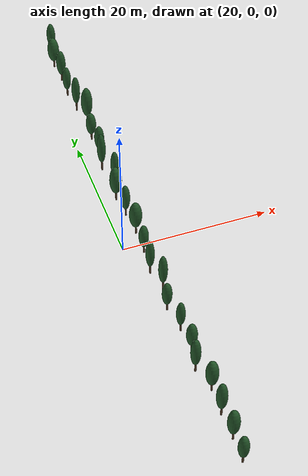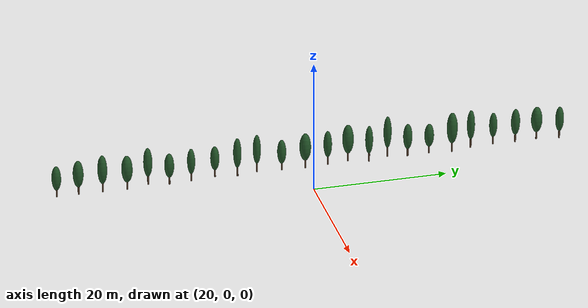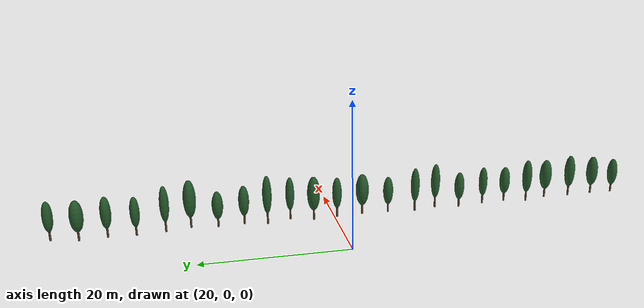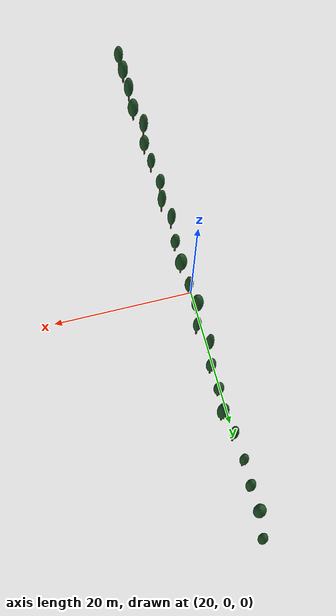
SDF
<sdf version="1.9">
 <world name="orchard_10x41">
  <model name="windbreak_E">
   <static>true</static>
   <link name="link">
    <visual name="wb_trunk_1">
     <pose>21.297 -38.000 4.976 0.0000 0.0000 0.0000</pose>
     <geometry><cylinder><radius>0.1200</radius><length>1.0540</length></cylinder></geometry>
     <material>
      <ambient>0.280 0.200 0.130 1</ambient>
      <diffuse>0.308 0.220 0.143 1</diffuse>
      <specular>0.084 0.060 0.039 1</specular>
     </material>
     <plugin filename="gz-sim-label-system" name="gz::sim::systems::Label"><label>63</label></plugin>
    </visual>
    <visual name="wb_crown_2">
     <pose>21.297 -38.000 7.371 0.0000 0.0000 0.0000</pose>
     <geometry><ellipsoid><radii>0.6716 0.6716 1.8684</radii></ellipsoid></geometry>
     <material>
      <ambient>0.120 0.300 0.140 1</ambient>
      <diffuse>0.132 0.330 0.154 1</diffuse>
      <specular>0.036 0.090 0.042 1</specular>
     </material>
     <plugin filename="gz-sim-label-system" name="gz::sim::systems::Label"><label>63</label></plugin>
    </visual>
    <visual name="wb_trunk_3">
     <pose>21.385 -34.858 5.043 0.0000 0.0000 0.0000</pose>
     <geometry><cylinder><radius>0.1200</radius><length>1.1688</length></cylinder></geometry>
     <material>
      <ambient>0.280 0.200 0.130 1</ambient>
      <diffuse>0.308 0.220 0.143 1</diffuse>
      <specular>0.084 0.060 0.039 1</specular>
     </material>
     <plugin filename="gz-sim-label-system" name="gz::sim::systems::Label"><label>63</label></plugin>
    </visual>
    <visual name="wb_crown_4">
     <pose>21.385 -34.858 7.699 0.0000 0.0000 0.0000</pose>
     <geometry><ellipsoid><radii>0.7596 0.7596 2.0720</radii></ellipsoid></geometry>
     <material>
      <ambient>0.120 0.300 0.140 1</ambient>
      <diffuse>0.132 0.330 0.154 1</diffuse>
      <specular>0.036 0.090 0.042 1</specular>
     </material>
     <plugin filename="gz-sim-label-system" name="gz::sim::systems::Label"><label>63</label></plugin>
    </visual>
    <visual name="wb_trunk_5">
     <pose>21.362 -31.351 5.071 0.0000 0.0000 0.0000</pose>
     <geometry><cylinder><radius>0.1200</radius><length>1.2591</length></cylinder></geometry>
     <material>
      <ambient>0.280 0.200 0.130 1</ambient>
      <diffuse>0.308 0.220 0.143 1</diffuse>
      <specular>0.084 0.060 0.039 1</specular>
     </material>
     <plugin filename="gz-sim-label-system" name="gz::sim::systems::Label"><label>63</label></plugin>
    </visual>
    <visual name="wb_crown_6">
     <pose>21.362 -31.351 7.933 0.0000 0.0000 0.0000</pose>
     <geometry><ellipsoid><radii>0.6894 0.6894 2.2321</radii></ellipsoid></geometry>
     <material>
      <ambient>0.120 0.300 0.140 1</ambient>
      <diffuse>0.132 0.330 0.154 1</diffuse>
      <specular>0.036 0.090 0.042 1</specular>
     </material>
     <plugin filename="gz-sim-label-system" name="gz::sim::systems::Label"><label>63</label></plugin>
    </visual>
    <visual name="wb_trunk_7">
     <pose>21.558 -27.822 5.004 0.0000 0.0000 0.0000</pose>
     <geometry><cylinder><radius>0.1200</radius><length>1.1712</length></cylinder></geometry>
     <material>
      <ambient>0.280 0.200 0.130 1</ambient>
      <diffuse>0.308 0.220 0.143 1</diffuse>
      <specular>0.084 0.060 0.039 1</specular>
     </material>
     <plugin filename="gz-sim-label-system" name="gz::sim::systems::Label"><label>63</label></plugin>
    </visual>
    <visual name="wb_crown_8">
     <pose>21.558 -27.822 7.666 0.0000 0.0000 0.0000</pose>
     <geometry><ellipsoid><radii>0.7927 0.7927 2.0762</radii></ellipsoid></geometry>
     <material>
      <ambient>0.120 0.300 0.140 1</ambient>
      <diffuse>0.132 0.330 0.154 1</diffuse>
      <specular>0.036 0.090 0.042 1</specular>
     </material>
     <plugin filename="gz-sim-label-system" name="gz::sim::systems::Label"><label>63</label></plugin>
    </visual>
    <visual name="wb_trunk_9">
     <pose>20.760 -24.620 5.055 0.0000 0.0000 0.0000</pose>
     <geometry><cylinder><radius>0.1200</radius><length>1.2712</length></cylinder></geometry>
     <material>
      <ambient>0.280 0.200 0.130 1</ambient>
      <diffuse>0.308 0.220 0.143 1</diffuse>
      <specular>0.084 0.060 0.039 1</specular>
     </material>
     <plugin filename="gz-sim-label-system" name="gz::sim::systems::Label"><label>63</label></plugin>
    </visual>
    <visual name="wb_crown_10">
     <pose>20.760 -24.620 7.944 0.0000 0.0000 0.0000</pose>
     <geometry><ellipsoid><radii>0.6357 0.6357 2.2536</radii></ellipsoid></geometry>
     <material>
      <ambient>0.120 0.300 0.140 1</ambient>
      <diffuse>0.132 0.330 0.154 1</diffuse>
      <specular>0.036 0.090 0.042 1</specular>
     </material>
     <plugin filename="gz-sim-label-system" name="gz::sim::systems::Label"><label>63</label></plugin>
    </visual>
    <visual name="wb_trunk_11">
     <pose>21.417 -21.647 4.948 0.0000 0.0000 0.0000</pose>
     <geometry><cylinder><radius>0.1200</radius><length>1.0609</length></cylinder></geometry>
     <material>
      <ambient>0.280 0.200 0.130 1</ambient>
      <diffuse>0.308 0.220 0.143 1</diffuse>
      <specular>0.084 0.060 0.039 1</specular>
     </material>
     <plugin filename="gz-sim-label-system" name="gz::sim::systems::Label"><label>63</label></plugin>
    </visual>
    <visual name="wb_crown_12">
     <pose>21.417 -21.647 7.360 0.0000 0.0000 0.0000</pose>
     <geometry><ellipsoid><radii>0.6917 0.6917 1.8807</radii></ellipsoid></geometry>
     <material>
      <ambient>0.120 0.300 0.140 1</ambient>
      <diffuse>0.132 0.330 0.154 1</diffuse>
      <specular>0.036 0.090 0.042 1</specular>
     </material>
     <plugin filename="gz-sim-label-system" name="gz::sim::systems::Label"><label>63</label></plugin>
    </visual>
    <visual name="wb_trunk_13">
     <pose>21.224 -18.396 4.979 0.0000 0.0000 0.0000</pose>
     <geometry><cylinder><radius>0.1200</radius><length>1.1223</length></cylinder></geometry>
     <material>
      <ambient>0.280 0.200 0.130 1</ambient>
      <diffuse>0.308 0.220 0.143 1</diffuse>
      <specular>0.084 0.060 0.039 1</specular>
     </material>
     <plugin filename="gz-sim-label-system" name="gz::sim::systems::Label"><label>63</label></plugin>
    </visual>
    <visual name="wb_crown_14">
     <pose>21.224 -18.396 7.530 0.0000 0.0000 0.0000</pose>
     <geometry><ellipsoid><radii>0.5637 0.5637 1.9896</radii></ellipsoid></geometry>
     <material>
      <ambient>0.120 0.300 0.140 1</ambient>
      <diffuse>0.132 0.330 0.154 1</diffuse>
      <specular>0.036 0.090 0.042 1</specular>
     </material>
     <plugin filename="gz-sim-label-system" name="gz::sim::systems::Label"><label>63</label></plugin>
    </visual>
    <visual name="wb_trunk_15">
     <pose>20.786 -14.827 4.948 0.0000 0.0000 0.0000</pose>
     <geometry><cylinder><radius>0.1200</radius><length>1.0563</length></cylinder></geometry>
     <material>
      <ambient>0.280 0.200 0.130 1</ambient>
      <diffuse>0.308 0.220 0.143 1</diffuse>
      <specular>0.084 0.060 0.039 1</specular>
     </material>
     <plugin filename="gz-sim-label-system" name="gz::sim::systems::Label"><label>63</label></plugin>
    </visual>
    <visual name="wb_crown_16">
     <pose>20.786 -14.827 7.348 0.0000 0.0000 0.0000</pose>
     <geometry><ellipsoid><radii>0.6419 0.6419 1.8725</radii></ellipsoid></geometry>
     <material>
      <ambient>0.120 0.300 0.140 1</ambient>
      <diffuse>0.132 0.330 0.154 1</diffuse>
      <specular>0.036 0.090 0.042 1</specular>
     </material>
     <plugin filename="gz-sim-label-system" name="gz::sim::systems::Label"><label>63</label></plugin>
    </visual>
    <visual name="wb_trunk_17">
     <pose>21.406 -11.655 5.081 0.0000 0.0000 0.0000</pose>
     <geometry><cylinder><radius>0.1200</radius><length>1.3249</length></cylinder></geometry>
     <material>
      <ambient>0.280 0.200 0.130 1</ambient>
      <diffuse>0.308 0.220 0.143 1</diffuse>
      <specular>0.084 0.060 0.039 1</specular>
     </material>
     <plugin filename="gz-sim-label-system" name="gz::sim::systems::Label"><label>63</label></plugin>
    </visual>
    <visual name="wb_crown_18">
     <pose>21.406 -11.655 8.092 0.0000 0.0000 0.0000</pose>
     <geometry><ellipsoid><radii>0.5822 0.5822 2.3487</radii></ellipsoid></geometry>
     <material>
      <ambient>0.120 0.300 0.140 1</ambient>
      <diffuse>0.132 0.330 0.154 1</diffuse>
      <specular>0.036 0.090 0.042 1</specular>
     </material>
     <plugin filename="gz-sim-label-system" name="gz::sim::systems::Label"><label>63</label></plugin>
    </visual>
    <visual name="wb_trunk_19">
     <pose>20.798 -8.628 5.064 0.0000 0.0000 0.0000</pose>
     <geometry><cylinder><radius>0.1200</radius><length>1.2913</length></cylinder></geometry>
     <material>
      <ambient>0.280 0.200 0.130 1</ambient>
      <diffuse>0.308 0.220 0.143 1</diffuse>
      <specular>0.084 0.060 0.039 1</specular>
     </material>
     <plugin filename="gz-sim-label-system" name="gz::sim::systems::Label"><label>63</label></plugin>
    </visual>
    <visual name="wb_crown_20">
     <pose>20.798 -8.628 7.999 0.0000 0.0000 0.0000</pose>
     <geometry><ellipsoid><radii>0.5625 0.5625 2.2892</radii></ellipsoid></geometry>
     <material>
      <ambient>0.120 0.300 0.140 1</ambient>
      <diffuse>0.132 0.330 0.154 1</diffuse>
      <specular>0.036 0.090 0.042 1</specular>
     </material>
     <plugin filename="gz-sim-label-system" name="gz::sim::systems::Label"><label>63</label></plugin>
    </visual>
    <visual name="wb_trunk_21">
     <pose>21.197 -5.054 4.947 0.0000 0.0000 0.0000</pose>
     <geometry><cylinder><radius>0.1200</radius><length>1.0624</length></cylinder></geometry>
     <material>
      <ambient>0.280 0.200 0.130 1</ambient>
      <diffuse>0.308 0.220 0.143 1</diffuse>
      <specular>0.084 0.060 0.039 1</specular>
     </material>
     <plugin filename="gz-sim-label-system" name="gz::sim::systems::Label"><label>63</label></plugin>
    </visual>
    <visual name="wb_crown_22">
     <pose>21.197 -5.054 7.362 0.0000 0.0000 0.0000</pose>
     <geometry><ellipsoid><radii>0.6394 0.6394 1.8834</radii></ellipsoid></geometry>
     <material>
      <ambient>0.120 0.300 0.140 1</ambient>
      <diffuse>0.132 0.330 0.154 1</diffuse>
      <specular>0.036 0.090 0.042 1</specular>
     </material>
     <plugin filename="gz-sim-label-system" name="gz::sim::systems::Label"><label>63</label></plugin>
    </visual>
    <visual name="wb_trunk_23">
     <pose>21.319 -1.590 5.014 0.0000 0.0000 0.0000</pose>
     <geometry><cylinder><radius>0.1200</radius><length>1.1985</length></cylinder></geometry>
     <material>
      <ambient>0.280 0.200 0.130 1</ambient>
      <diffuse>0.308 0.220 0.143 1</diffuse>
      <specular>0.084 0.060 0.039 1</specular>
     </material>
     <plugin filename="gz-sim-label-system" name="gz::sim::systems::Label"><label>63</label></plugin>
    </visual>
    <visual name="wb_crown_24">
     <pose>21.319 -1.590 7.738 0.0000 0.0000 0.0000</pose>
     <geometry><ellipsoid><radii>0.8286 0.8286 2.1247</radii></ellipsoid></geometry>
     <material>
      <ambient>0.120 0.300 0.140 1</ambient>
      <diffuse>0.132 0.330 0.154 1</diffuse>
      <specular>0.036 0.090 0.042 1</specular>
     </material>
     <plugin filename="gz-sim-label-system" name="gz::sim::systems::Label"><label>63</label></plugin>
    </visual>
    <visual name="wb_trunk_25">
     <pose>21.105 1.818 5.001 0.0000 0.0000 0.0000</pose>
     <geometry><cylinder><radius>0.1200</radius><length>1.1716</length></cylinder></geometry>
     <material>
      <ambient>0.280 0.200 0.130 1</ambient>
      <diffuse>0.308 0.220 0.143 1</diffuse>
      <specular>0.084 0.060 0.039 1</specular>
     </material>
     <plugin filename="gz-sim-label-system" name="gz::sim::systems::Label"><label>63</label></plugin>
    </visual>
    <visual name="wb_crown_26">
     <pose>21.105 1.818 7.663 0.0000 0.0000 0.0000</pose>
     <geometry><ellipsoid><radii>0.5980 0.5980 2.0769</radii></ellipsoid></geometry>
     <material>
      <ambient>0.120 0.300 0.140 1</ambient>
      <diffuse>0.132 0.330 0.154 1</diffuse>
      <specular>0.036 0.090 0.042 1</specular>
     </material>
     <plugin filename="gz-sim-label-system" name="gz::sim::systems::Label"><label>63</label></plugin>
    </visual>
    <visual name="wb_trunk_27">
     <pose>20.816 4.923 5.053 0.0000 0.0000 0.0000</pose>
     <geometry><cylinder><radius>0.1200</radius><length>1.2738</length></cylinder></geometry>
     <material>
      <ambient>0.280 0.200 0.130 1</ambient>
      <diffuse>0.308 0.220 0.143 1</diffuse>
      <specular>0.084 0.060 0.039 1</specular>
     </material>
     <plugin filename="gz-sim-label-system" name="gz::sim::systems::Label"><label>63</label></plugin>
    </visual>
    <visual name="wb_crown_28">
     <pose>20.816 4.923 7.947 0.0000 0.0000 0.0000</pose>
     <geometry><ellipsoid><radii>0.8106 0.8106 2.2580</radii></ellipsoid></geometry>
     <material>
      <ambient>0.120 0.300 0.140 1</ambient>
      <diffuse>0.132 0.330 0.154 1</diffuse>
      <specular>0.036 0.090 0.042 1</specular>
     </material>
     <plugin filename="gz-sim-label-system" name="gz::sim::systems::Label"><label>63</label></plugin>
    </visual>
    <visual name="wb_trunk_29">
     <pose>21.655 7.844 5.039 0.0000 0.0000 0.0000</pose>
     <geometry><cylinder><radius>0.1200</radius><length>1.2437</length></cylinder></geometry>
     <material>
      <ambient>0.280 0.200 0.130 1</ambient>
      <diffuse>0.308 0.220 0.143 1</diffuse>
      <specular>0.084 0.060 0.039 1</specular>
     </material>
     <plugin filename="gz-sim-label-system" name="gz::sim::systems::Label"><label>63</label></plugin>
    </visual>
    <visual name="wb_crown_30">
     <pose>21.655 7.844 7.866 0.0000 0.0000 0.0000</pose>
     <geometry><ellipsoid><radii>0.5524 0.5524 2.2048</radii></ellipsoid></geometry>
     <material>
      <ambient>0.120 0.300 0.140 1</ambient>
      <diffuse>0.132 0.330 0.154 1</diffuse>
      <specular>0.036 0.090 0.042 1</specular>
     </material>
     <plugin filename="gz-sim-label-system" name="gz::sim::systems::Label"><label>63</label></plugin>
    </visual>
    <visual name="wb_trunk_31">
     <pose>20.791 10.841 5.122 0.0000 0.0000 0.0000</pose>
     <geometry><cylinder><radius>0.1200</radius><length>1.4062</length></cylinder></geometry>
     <material>
      <ambient>0.280 0.200 0.130 1</ambient>
      <diffuse>0.308 0.220 0.143 1</diffuse>
      <specular>0.084 0.060 0.039 1</specular>
     </material>
     <plugin filename="gz-sim-label-system" name="gz::sim::systems::Label"><label>63</label></plugin>
    </visual>
    <visual name="wb_crown_32">
     <pose>20.791 10.841 8.318 0.0000 0.0000 0.0000</pose>
     <geometry><ellipsoid><radii>0.5684 0.5684 2.4928</radii></ellipsoid></geometry>
     <material>
      <ambient>0.120 0.300 0.140 1</ambient>
      <diffuse>0.132 0.330 0.154 1</diffuse>
      <specular>0.036 0.090 0.042 1</specular>
     </material>
     <plugin filename="gz-sim-label-system" name="gz::sim::systems::Label"><label>63</label></plugin>
    </visual>
    <visual name="wb_trunk_33">
     <pose>21.393 13.717 4.980 0.0000 0.0000 0.0000</pose>
     <geometry><cylinder><radius>0.1200</radius><length>1.1208</length></cylinder></geometry>
     <material>
      <ambient>0.280 0.200 0.130 1</ambient>
      <diffuse>0.308 0.220 0.143 1</diffuse>
      <specular>0.084 0.060 0.039 1</specular>
     </material>
     <plugin filename="gz-sim-label-system" name="gz::sim::systems::Label"><label>63</label></plugin>
    </visual>
    <visual name="wb_crown_34">
     <pose>21.393 13.717 7.527 0.0000 0.0000 0.0000</pose>
     <geometry><ellipsoid><radii>0.6543 0.6543 1.9869</radii></ellipsoid></geometry>
     <material>
      <ambient>0.120 0.300 0.140 1</ambient>
      <diffuse>0.132 0.330 0.154 1</diffuse>
      <specular>0.036 0.090 0.042 1</specular>
     </material>
     <plugin filename="gz-sim-label-system" name="gz::sim::systems::Label"><label>63</label></plugin>
    </visual>
    <visual name="wb_trunk_35">
     <pose>21.264 16.985 4.933 0.0000 0.0000 0.0000</pose>
     <geometry><cylinder><radius>0.1200</radius><length>1.0257</length></cylinder></geometry>
     <material>
      <ambient>0.280 0.200 0.130 1</ambient>
      <diffuse>0.308 0.220 0.143 1</diffuse>
      <specular>0.084 0.060 0.039 1</specular>
     </material>
     <plugin filename="gz-sim-label-system" name="gz::sim::systems::Label"><label>63</label></plugin>
    </visual>
    <visual name="wb_crown_36">
     <pose>21.264 16.985 7.265 0.0000 0.0000 0.0000</pose>
     <geometry><ellipsoid><radii>0.6812 0.6812 1.8183</radii></ellipsoid></geometry>
     <material>
      <ambient>0.120 0.300 0.140 1</ambient>
      <diffuse>0.132 0.330 0.154 1</diffuse>
      <specular>0.036 0.090 0.042 1</specular>
     </material>
     <plugin filename="gz-sim-label-system" name="gz::sim::systems::Label"><label>63</label></plugin>
    </visual>
    <visual name="wb_trunk_37">
     <pose>21.728 20.315 5.110 0.0000 0.0000 0.0000</pose>
     <geometry><cylinder><radius>0.1200</radius><length>1.3772</length></cylinder></geometry>
     <material>
      <ambient>0.280 0.200 0.130 1</ambient>
      <diffuse>0.308 0.220 0.143 1</diffuse>
      <specular>0.084 0.060 0.039 1</specular>
     </material>
     <plugin filename="gz-sim-label-system" name="gz::sim::systems::Label"><label>63</label></plugin>
    </visual>
    <visual name="wb_crown_38">
     <pose>21.728 20.315 8.240 0.0000 0.0000 0.0000</pose>
     <geometry><ellipsoid><radii>0.7771 0.7771 2.4415</radii></ellipsoid></geometry>
     <material>
      <ambient>0.120 0.300 0.140 1</ambient>
      <diffuse>0.132 0.330 0.154 1</diffuse>
      <specular>0.036 0.090 0.042 1</specular>
     </material>
     <plugin filename="gz-sim-label-system" name="gz::sim::systems::Label"><label>63</label></plugin>
    </visual>
    <visual name="wb_trunk_39">
     <pose>21.091 23.343 5.080 0.0000 0.0000 0.0000</pose>
     <geometry><cylinder><radius>0.1200</radius><length>1.3137</length></cylinder></geometry>
     <material>
      <ambient>0.280 0.200 0.130 1</ambient>
      <diffuse>0.308 0.220 0.143 1</diffuse>
      <specular>0.084 0.060 0.039 1</specular>
     </material>
     <plugin filename="gz-sim-label-system" name="gz::sim::systems::Label"><label>63</label></plugin>
    </visual>
    <visual name="wb_crown_40">
     <pose>21.091 23.343 8.065 0.0000 0.0000 0.0000</pose>
     <geometry><ellipsoid><radii>0.5669 0.5669 2.3289</radii></ellipsoid></geometry>
     <material>
      <ambient>0.120 0.300 0.140 1</ambient>
      <diffuse>0.132 0.330 0.154 1</diffuse>
      <specular>0.036 0.090 0.042 1</specular>
     </material>
     <plugin filename="gz-sim-label-system" name="gz::sim::systems::Label"><label>63</label></plugin>
    </visual>
    <visual name="wb_trunk_41">
     <pose>20.803 26.825 4.973 0.0000 0.0000 0.0000</pose>
     <geometry><cylinder><radius>0.1200</radius><length>1.1009</length></cylinder></geometry>
     <material>
      <ambient>0.280 0.200 0.130 1</ambient>
      <diffuse>0.308 0.220 0.143 1</diffuse>
      <specular>0.084 0.060 0.039 1</specular>
     </material>
     <plugin filename="gz-sim-label-system" name="gz::sim::systems::Label"><label>63</label></plugin>
    </visual>
    <visual name="wb_crown_42">
     <pose>20.803 26.825 7.475 0.0000 0.0000 0.0000</pose>
     <geometry><ellipsoid><radii>0.5736 0.5736 1.9515</radii></ellipsoid></geometry>
     <material>
      <ambient>0.120 0.300 0.140 1</ambient>
      <diffuse>0.132 0.330 0.154 1</diffuse>
      <specular>0.036 0.090 0.042 1</specular>
     </material>
     <plugin filename="gz-sim-label-system" name="gz::sim::systems::Label"><label>63</label></plugin>
    </visual>
    <visual name="wb_trunk_43">
     <pose>20.962 30.172 4.999 0.0000 0.0000 0.0000</pose>
     <geometry><cylinder><radius>0.1200</radius><length>1.1578</length></cylinder></geometry>
     <material>
      <ambient>0.280 0.200 0.130 1</ambient>
      <diffuse>0.308 0.220 0.143 1</diffuse>
      <specular>0.084 0.060 0.039 1</specular>
     </material>
     <plugin filename="gz-sim-label-system" name="gz::sim::systems::Label"><label>63</label></plugin>
    </visual>
    <visual name="wb_crown_44">
     <pose>20.962 30.172 7.630 0.0000 0.0000 0.0000</pose>
     <geometry><ellipsoid><radii>0.6424 0.6424 2.0525</radii></ellipsoid></geometry>
     <material>
      <ambient>0.120 0.300 0.140 1</ambient>
      <diffuse>0.132 0.330 0.154 1</diffuse>
      <specular>0.036 0.090 0.042 1</specular>
     </material>
     <plugin filename="gz-sim-label-system" name="gz::sim::systems::Label"><label>63</label></plugin>
    </visual>
    <visual name="wb_trunk_45">
     <pose>20.803 33.462 4.962 0.0000 0.0000 0.0000</pose>
     <geometry><cylinder><radius>0.1200</radius><length>1.1313</length></cylinder></geometry>
     <material>
      <ambient>0.280 0.200 0.130 1</ambient>
      <diffuse>0.308 0.220 0.143 1</diffuse>
      <specular>0.084 0.060 0.039 1</specular>
     </material>
     <plugin filename="gz-sim-label-system" name="gz::sim::systems::Label"><label>63</label></plugin>
    </visual>
    <visual name="wb_crown_46">
     <pose>20.803 33.462 7.533 0.0000 0.0000 0.0000</pose>
     <geometry><ellipsoid><radii>0.8059 0.8059 2.0054</radii></ellipsoid></geometry>
     <material>
      <ambient>0.120 0.300 0.140 1</ambient>
      <diffuse>0.132 0.330 0.154 1</diffuse>
      <specular>0.036 0.090 0.042 1</specular>
     </material>
     <plugin filename="gz-sim-label-system" name="gz::sim::systems::Label"><label>63</label></plugin>
    </visual>
    <visual name="wb_trunk_47">
     <pose>21.419 36.769 5.010 0.0000 0.0000 0.0000</pose>
     <geometry><cylinder><radius>0.1200</radius><length>1.1041</length></cylinder></geometry>
     <material>
      <ambient>0.280 0.200 0.130 1</ambient>
      <diffuse>0.308 0.220 0.143 1</diffuse>
      <specular>0.084 0.060 0.039 1</specular>
     </material>
     <plugin filename="gz-sim-label-system" name="gz::sim::systems::Label"><label>63</label></plugin>
    </visual>
    <visual name="wb_crown_48">
     <pose>21.419 36.769 7.520 0.0000 0.0000 0.0000</pose>
     <geometry><ellipsoid><radii>0.6099 0.6099 1.9573</radii></ellipsoid></geometry>
     <material>
      <ambient>0.120 0.300 0.140 1</ambient>
      <diffuse>0.132 0.330 0.154 1</diffuse>
      <specular>0.036 0.090 0.042 1</specular>
     </material>
     <plugin filename="gz-sim-label-system" name="gz::sim::systems::Label"><label>63</label></plugin>
    </visual>
    <collision name="c0">
     <pose>21.297 -38.000 6.844 0.0000 0.0000 0.0000</pose>
     <geometry><cylinder><radius>0.1500</radius><length>4.7908</length></cylinder></geometry>
    </collision>
    <collision name="c1">
     <pose>21.385 -34.858 7.115 0.0000 0.0000 0.0000</pose>
     <geometry><cylinder><radius>0.1500</radius><length>5.3127</length></cylinder></geometry>
    </collision>
    <collision name="c2">
     <pose>21.362 -31.351 7.303 0.0000 0.0000 0.0000</pose>
     <geometry><cylinder><radius>0.1500</radius><length>5.7234</length></cylinder></geometry>
    </collision>
    <collision name="c3">
     <pose>21.558 -27.822 7.080 0.0000 0.0000 0.0000</pose>
     <geometry><cylinder><radius>0.1500</radius><length>5.3236</length></cylinder></geometry>
    </collision>
    <collision name="c4">
     <pose>20.760 -24.620 7.308 0.0000 0.0000 0.0000</pose>
     <geometry><cylinder><radius>0.1500</radius><length>5.7784</length></cylinder></geometry>
    </collision>
    <collision name="c5">
     <pose>21.417 -21.647 6.829 0.0000 0.0000 0.0000</pose>
     <geometry><cylinder><radius>0.1500</radius><length>4.8224</length></cylinder></geometry>
    </collision>
    <collision name="c6">
     <pose>21.224 -18.396 6.969 0.0000 0.0000 0.0000</pose>
     <geometry><cylinder><radius>0.1500</radius><length>5.1015</length></cylinder></geometry>
    </collision>
    <collision name="c7">
     <pose>20.786 -14.827 6.820 0.0000 0.0000 0.0000</pose>
     <geometry><cylinder><radius>0.1500</radius><length>4.8013</length></cylinder></geometry>
    </collision>
    <collision name="c8">
     <pose>21.406 -11.655 7.430 0.0000 0.0000 0.0000</pose>
     <geometry><cylinder><radius>0.1500</radius><length>6.0223</length></cylinder></geometry>
    </collision>
    <collision name="c9">
     <pose>20.798 -8.628 7.353 0.0000 0.0000 0.0000</pose>
     <geometry><cylinder><radius>0.1500</radius><length>5.8698</length></cylinder></geometry>
    </collision>
    <collision name="c10">
     <pose>21.197 -5.054 6.831 0.0000 0.0000 0.0000</pose>
     <geometry><cylinder><radius>0.1500</radius><length>4.8291</length></cylinder></geometry>
    </collision>
    <collision name="c11">
     <pose>21.319 -1.590 7.139 0.0000 0.0000 0.0000</pose>
     <geometry><cylinder><radius>0.1500</radius><length>5.4478</length></cylinder></geometry>
    </collision>
    <collision name="c12">
     <pose>21.105 1.818 7.077 0.0000 0.0000 0.0000</pose>
     <geometry><cylinder><radius>0.1500</radius><length>5.3254</length></cylinder></geometry>
    </collision>
    <collision name="c13">
     <pose>20.816 4.923 7.311 0.0000 0.0000 0.0000</pose>
     <geometry><cylinder><radius>0.1500</radius><length>5.7899</length></cylinder></geometry>
    </collision>
    <collision name="c14">
     <pose>21.655 7.844 7.244 0.0000 0.0000 0.0000</pose>
     <geometry><cylinder><radius>0.1500</radius><length>5.6533</length></cylinder></geometry>
    </collision>
    <collision name="c15">
     <pose>20.791 10.841 7.615 0.0000 0.0000 0.0000</pose>
     <geometry><cylinder><radius>0.1500</radius><length>6.3919</length></cylinder></geometry>
    </collision>
    <collision name="c16">
     <pose>21.393 13.717 6.967 0.0000 0.0000 0.0000</pose>
     <geometry><cylinder><radius>0.1500</radius><length>5.0947</length></cylinder></geometry>
    </collision>
    <collision name="c17">
     <pose>21.264 16.985 6.752 0.0000 0.0000 0.0000</pose>
     <geometry><cylinder><radius>0.1500</radius><length>4.6622</length></cylinder></geometry>
    </collision>
    <collision name="c18">
     <pose>21.728 20.315 7.551 0.0000 0.0000 0.0000</pose>
     <geometry><cylinder><radius>0.1500</radius><length>6.2602</length></cylinder></geometry>
    </collision>
    <collision name="c19">
     <pose>21.091 23.343 7.409 0.0000 0.0000 0.0000</pose>
     <geometry><cylinder><radius>0.1500</radius><length>5.9715</length></cylinder></geometry>
    </collision>
    <collision name="c20">
     <pose>20.803 26.825 6.925 0.0000 0.0000 0.0000</pose>
     <geometry><cylinder><radius>0.1500</radius><length>5.0039</length></cylinder></geometry>
    </collision>
    <collision name="c21">
     <pose>20.962 30.172 7.051 0.0000 0.0000 0.0000</pose>
     <geometry><cylinder><radius>0.1500</radius><length>5.2628</length></cylinder></geometry>
    </collision>
    <collision name="c22">
     <pose>20.803 33.462 6.968 0.0000 0.0000 0.0000</pose>
     <geometry><cylinder><radius>0.1500</radius><length>5.1422</length></cylinder></geometry>
    </collision>
    <collision name="c23">
     <pose>21.419 36.769 6.968 0.0000 0.0000 0.0000</pose>
     <geometry><cylinder><radius>0.1500</radius><length>5.0188</length></cylinder></geometry>
    </collision>
   </link>
  </model>
 </world>
</sdf>
